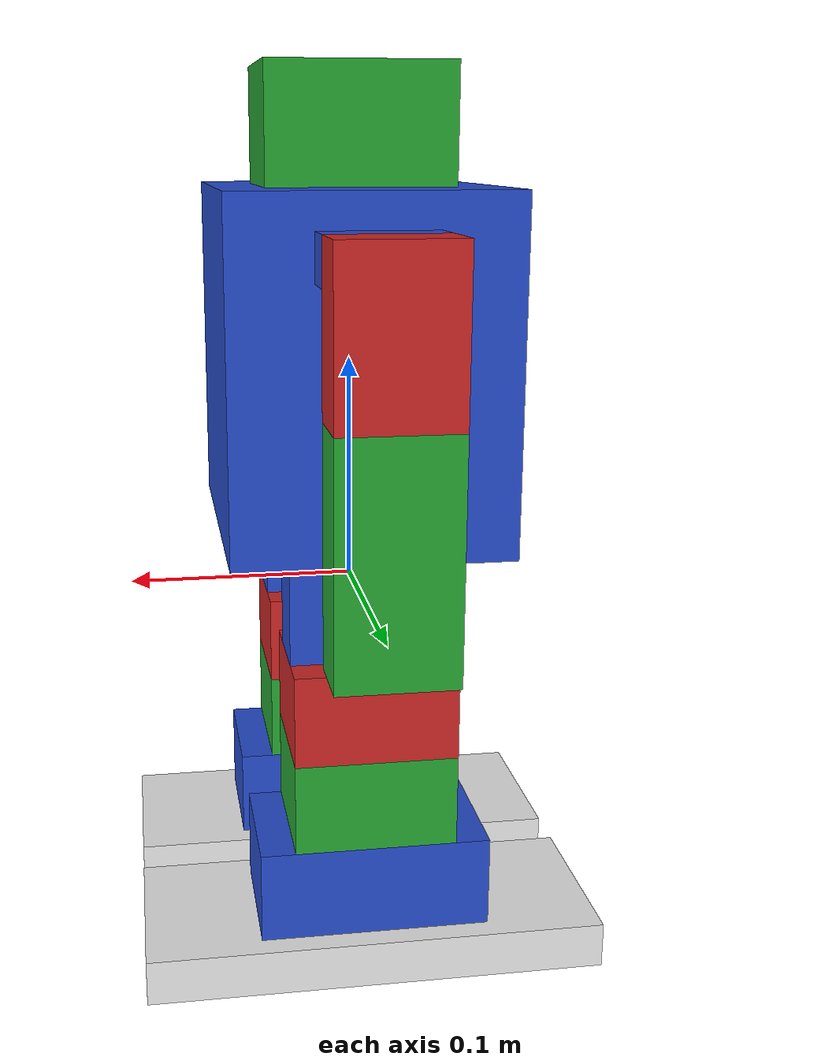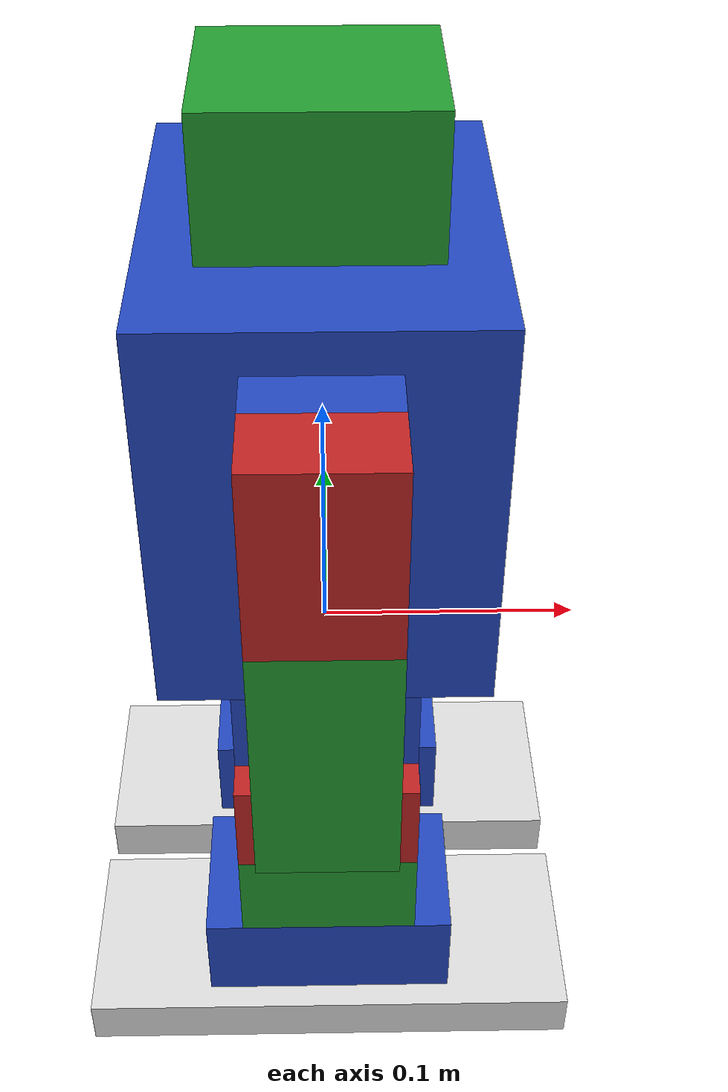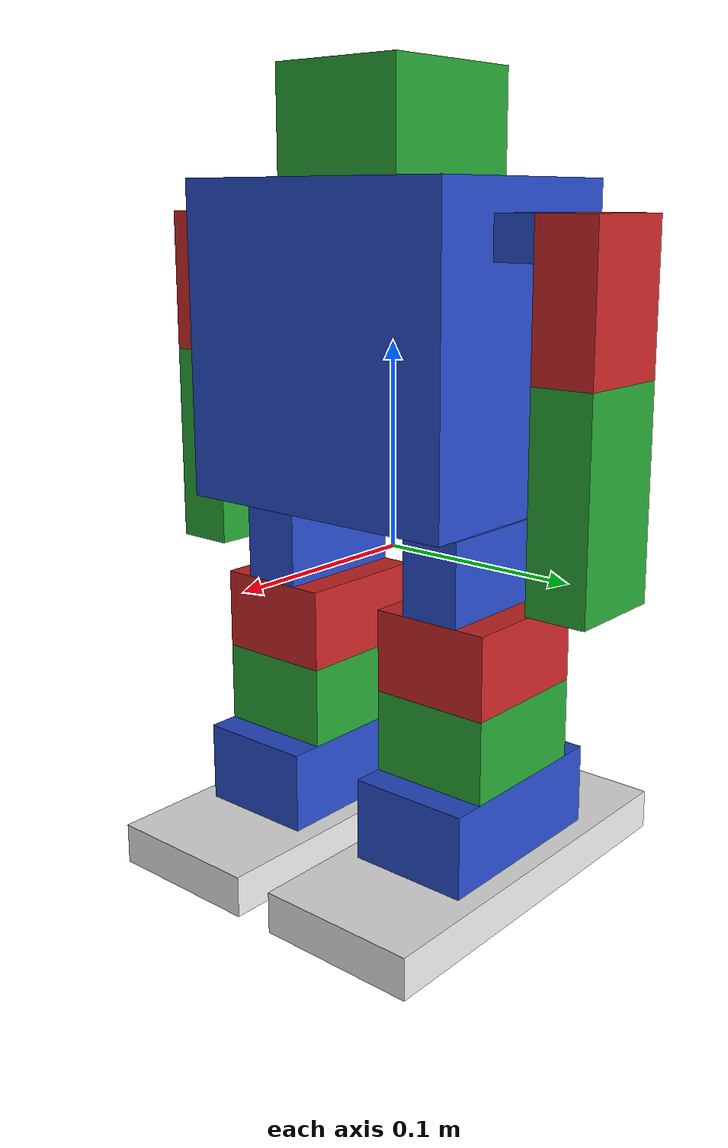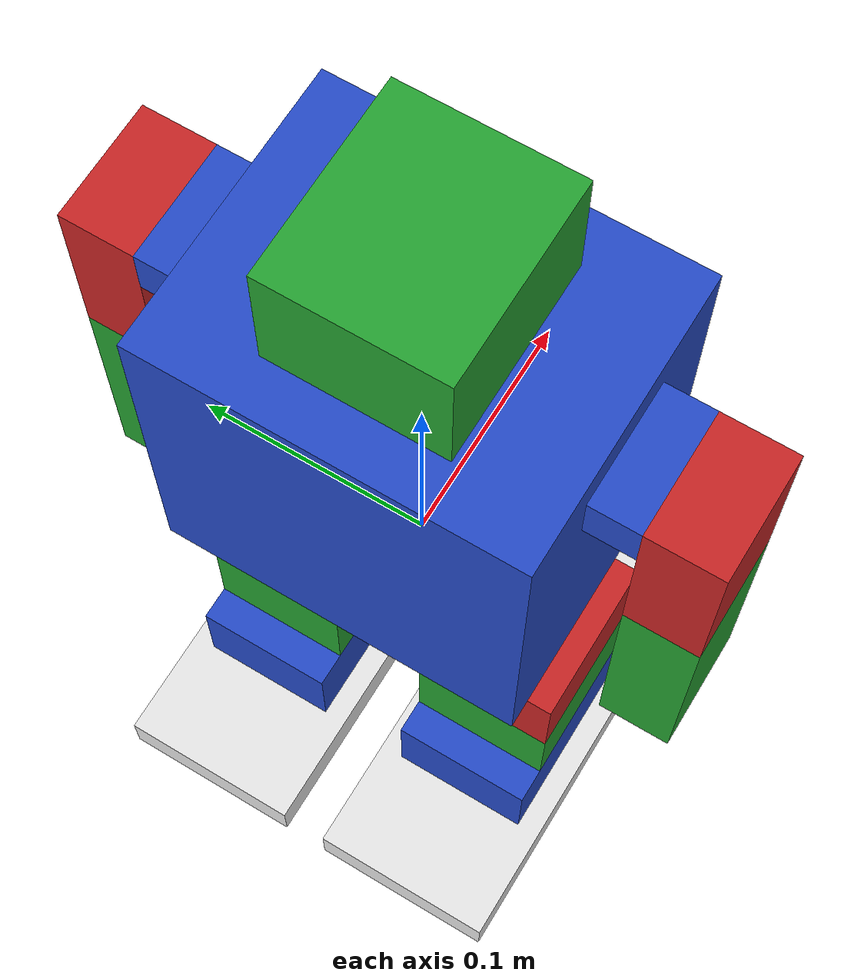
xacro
<robot xmlns:xacro="http://ros.org/wiki/xacro"
       xmlns:controller="http://playerstage.sourceforge.net/gazebo/xmlschema/#controller"
       xmlns:interface="http://playerstage.sourceforge.net/gazebo/xmlschema/#interface"
       name="simple_box">

  <!-- *************** JOINT Definition *****************-->
  <xacro:macro name="my_joint" params="name parent child *axis *origin">
    <joint name="${name}" type="revolute" >
      <limit lower="-3" upper="3" effort="10.0" velocity="2.0" />
      <parent link="${parent}" />
      <child link="${child}" />
      <xacro:insert_block name="axis" />
      <xacro:insert_block name="origin" />
    </joint>
  </xacro:macro>

  <!-- *************** LINK Definition *****************-->
  <xacro:macro name="my_link" params="name mass color z *box">
    <link name="${name}">
      <inertial>
  	<mass value="${mass}" />
	<!-- center of mass (com) is defined w.r.t. link local coordinate system  -->
  	<origin xyz="0 0 ${z}" />

  	<inertia  ixx="${0.001 * mass}" ixy="0.0"  ixz="0.0"  iyy="${0.001 * mass}"  iyz="0.0"  izz="${0.001 * mass}" />
      </inertial>
      <visual>
	<!-- visual origin is defined w.r.t. link local coordinate system -->
  	<origin xyz="0 0 ${z}" rpy="0 0 0" />
  	<geometry name="${name}_visual_geom">
          <xacro:insert_block name="box" />
  	</geometry>
      </visual>
      <collision>
	<!-- collision origin is defined w.r.t. link local coordinate system  -->
  	<origin xyz="0 0 ${z}" rpy="0 0 0 " />
  	<geometry name="${name}_collision_geom">
          <xacro:insert_block name="box" />
  	</geometry>
      </collision>
    </link>
    <gazebo reference="${name}">
      <material>Gazebo/${color}</material>
      <turnGravityOff>false</turnGravityOff>
    </gazebo>
  </xacro:macro>

  <!-- *************** LEG Definition *****************-->
  <xacro:macro name="my_leg" params="name y">
    <!-- joint definition -->

    <xacro:my_joint name="${name}_joint1" parent="torso_link1" child="${name}_link1">
      <axis xyz="1 0 0"/>
      <origin xyz="0 ${y * 0.05} 0.0" rpy="0 0 0" />
    </xacro:my_joint>
    <xacro:my_joint name="${name}_joint2" parent="${name}_link1" child="${name}_link2">
      <axis xyz="0 1 0"/>
      <origin xyz="0 0 -0.02" rpy="0 0 0" />
    </xacro:my_joint>
    <xacro:my_joint name="${name}_joint3" parent="${name}_link2" child="${name}_link3">
      <axis xyz="0 1 0"/>
      <origin xyz="0 0 -0.04" rpy="0 0 0" />
    </xacro:my_joint>
    <xacro:my_joint name="${name}_joint4" parent="${name}_link3" child="${name}_link4">
      <axis xyz="0 1 0"/>
      <origin xyz="0 0 -0.04" rpy="0 0 0" />
    </xacro:my_joint>
    <xacro:my_joint name="${name}_joint5" parent="${name}_link4" child="${name}_link5">
      <axis xyz="1 0 0"/>
      <origin xyz="0 0 -0.04" rpy="0 0 0" />
    </xacro:my_joint>

    <xacro:my_link name="${name}_link1" mass="0.1" z="0.0" color="Blue">
      <box size="0.07 0.03 0.04" />
   </xacro:my_link>
    <xacro:my_link name="${name}_link2" mass="0.1" z="-0.02" color="Red">
      <box size="0.07 0.06 0.04" />
    </xacro:my_link>
    <xacro:my_link name="${name}_link3" mass="0.1" z="-0.02" color="Green">
      <box size="0.07 0.06 0.04" />
    </xacro:my_link>
    <xacro:my_link name="${name}_link4" mass="0.2" z="-0.02" color="Blue">
      <box size="0.10 0.06 0.04" />
    </xacro:my_link>
    <xacro:my_link name="${name}_link5" mass="0.2" z="-0.01" color="White">
      <box size="0.2 0.08 0.02" />
    </xacro:my_link>
  </xacro:macro>

  <!-- *************** ARM Definition *****************-->
  <xacro:macro name="my_arm" params="name y">
    <!-- joint definition -->

    <xacro:my_joint name="${name}_joint1" parent="torso_link1" child="${name}_link1">
      <axis xyz="0 1 0"/>
      <origin xyz="0 ${y * 0.08} 0.15" rpy="0 0 0" />
    </xacro:my_joint>

    <xacro:my_joint name="${name}_joint2" parent="${name}_link1" child="${name}_link2">
      <axis xyz="1 0 0"/>
      <origin xyz="0 ${y * 0.03} 0.01" rpy="0 0 0" />
    </xacro:my_joint>

    <xacro:my_joint name="${name}_joint3" parent="${name}_link2" child="${name}_link3">
      <axis xyz="1 0 0"/>
      <origin xyz="0 0 -0.085" rpy="0 0 0" />
    </xacro:my_joint>

    <xacro:my_link name="${name}_link1" mass="0.1" z="0.0" color="Blue">
      <box size="0.05 0.030 0.02" />
   </xacro:my_link>
    <xacro:my_link name="${name}_link2" mass="0.1" z="-0.035" color="Red">
      <box size="0.05 0.03 0.07" />
    </xacro:my_link>
    <xacro:my_link name="${name}_link3" mass="0.1" z="-0.035" color="Green">
      <box size="0.05 0.03 0.10" />
    </xacro:my_link>
  </xacro:macro>

  <!-- *************** HEAD Definition *****************-->
  <xacro:macro name="my_head" params="name">
    <!-- joint definition -->

    <xacro:my_joint name="${name}_joint1" parent="torso_link1" child="${name}_link1">
      <axis xyz="0 0 1"/>
      <origin xyz="0 0 0.2" rpy="0 0 0" />
    </xacro:my_joint>

    <xacro:my_link name="${name}_link1" mass="0.1" z="0.0" color="Green">
      <box size="0.08 0.07 0.05" />
    </xacro:my_link>
  </xacro:macro>

  <!-- *************** TORSO Definition *****************-->
  <xacro:my_link name="torso_link1" mass="0.1" z="0.1" color="Blue">
    <box size="0.12 0.15 0.15" />
  </xacro:my_link>

  <xacro:my_leg name="my_rleg" y="1" />
  <xacro:my_leg name="my_lleg" y="-1" />

  <xacro:my_arm name="my_rarm" y="1" />
  <xacro:my_arm name="my_larm" y="-1" />

  <xacro:my_head name="my_head1" />

  <gazebo>
    <controller:gazebo_ros_test name="gazebo_ros_test" plugin="libgazebo_ros_test.so">
      <interface:audio name="gazebo_ros_test_dummy_interface" />
      <alwaysOn>true</alwaysOn>
      <updateRate>1.0</updateRate>
      <timeout>5</timeout>
    </controller:gazebo_ros_test>
  </gazebo>
</robot>
